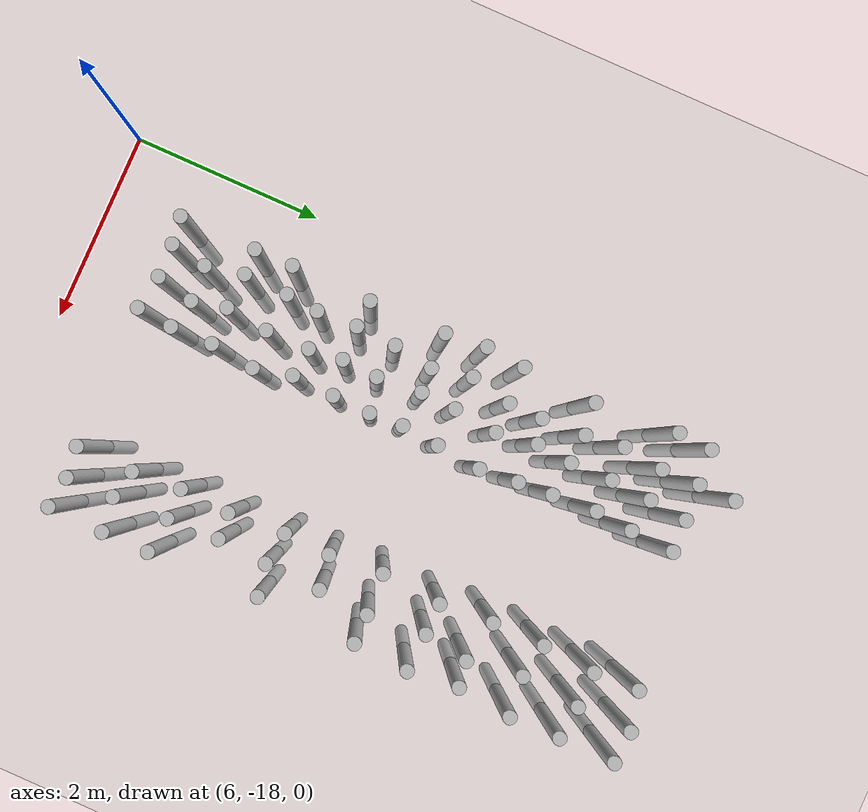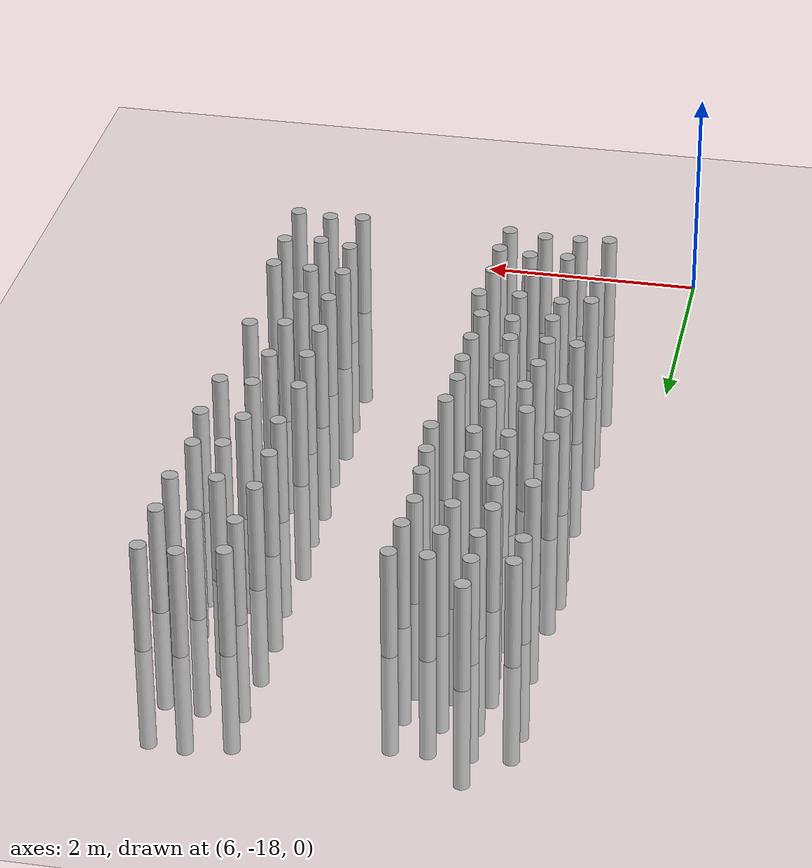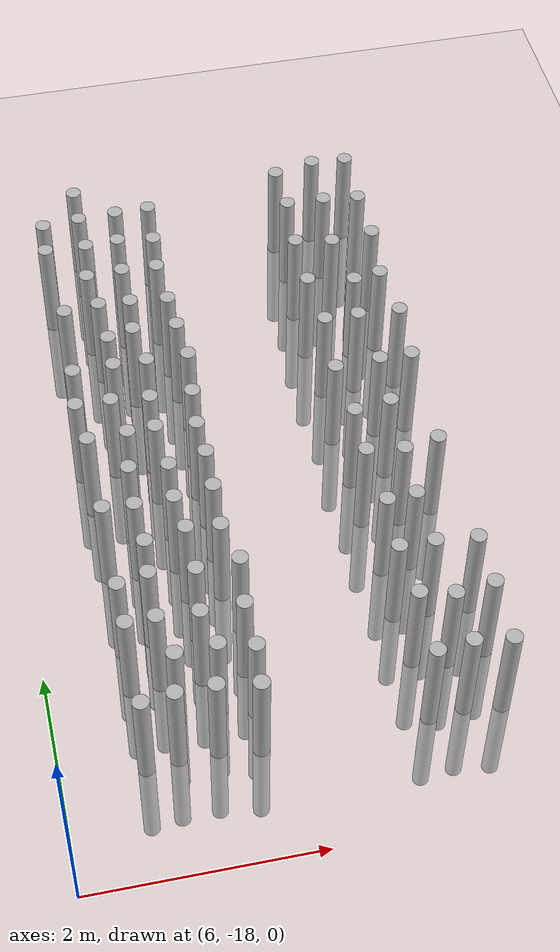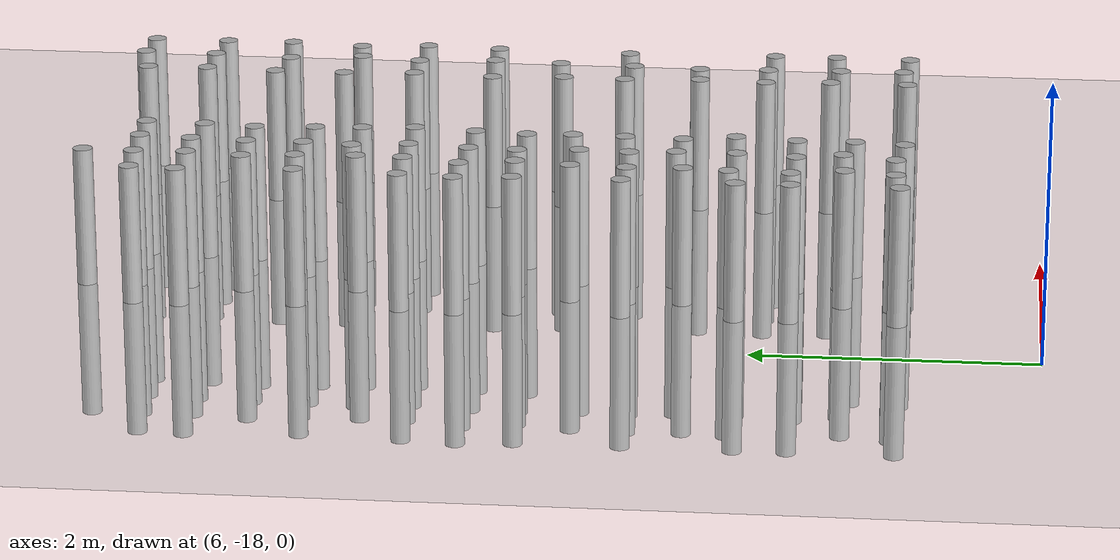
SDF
<sdf version="1.7">
 <world name="farmland_world">
  <model name="ground_plane">
   <static>1</static>
   <link name="link">
    <collision name="collision">
     <geometry><plane><normal>0 0 1</normal><size>40.0 40.0</size></plane></geometry>
     <surface><friction><ode><mu>100</mu><mu2>50</mu2></ode></friction></surface>
    </collision>
    <visual name="visual">
     <cast_shadows>0</cast_shadows>
     <geometry><plane><normal>0 0 1</normal><size>40.0 40.0</size></plane></geometry>
     <material>
      <script><uri>file://media/materials/scripts/gazebo.material</uri><name>Gazebo/Grey</name></script>
     </material>
    </visual>
   </link>
  </model>
  <model name="tree_3_225">
   <static>1</static>
   <link name="link">
    <collision name="collision">
     <geometry><cylinder><radius>0.07</radius><length>2.0</length></cylinder></geometry>
     <surface><friction><ode><mu>100</mu><mu2>50</mu2></ode></friction></surface>
    </collision>
    <visual name="visual">
     <geometry><cylinder><radius>0.07</radius><length>2.0</length></cylinder></geometry>
    </visual>
   </link>
   <pose>6.6757209084733296 -11.627781574815922 0 0 0 0</pose>
  </model>
  <model name="tree_3_226">
   <static>1</static>
   <link name="link">
    <collision name="collision">
     <geometry><cylinder><radius>0.07</radius><length>2.0</length></cylinder></geometry>
     <surface><friction><ode><mu>100</mu><mu2>50</mu2></ode></friction></surface>
    </collision>
    <visual name="visual">
     <geometry><cylinder><radius>0.07</radius><length>2.0</length></cylinder></geometry>
    </visual>
   </link>
   <pose>6.654033084049539 -11.960620914995307 0 0 0 0</pose>
  </model>
  <model name="tree_3_228">
   <static>1</static>
   <link name="link">
    <collision name="collision">
     <geometry><cylinder><radius>0.07</radius><length>2.0</length></cylinder></geometry>
     <surface><friction><ode><mu>100</mu><mu2>50</mu2></ode></friction></surface>
    </collision>
    <visual name="visual">
     <geometry><cylinder><radius>0.07</radius><length>2.0</length></cylinder></geometry>
    </visual>
   </link>
   <pose>6.713250450047386 -12.779822570586507 0 0 0 0</pose>
  </model>
  <model name="tree_3_230">
   <static>1</static>
   <link name="link">
    <collision name="collision">
     <geometry><cylinder><radius>0.07</radius><length>2.0</length></cylinder></geometry>
     <surface><friction><ode><mu>100</mu><mu2>50</mu2></ode></friction></surface>
    </collision>
    <visual name="visual">
     <geometry><cylinder><radius>0.07</radius><length>2.0</length></cylinder></geometry>
    </visual>
   </link>
   <pose>6.682120593932231 -13.515012797646934 0 0 0 0</pose>
  </model>
  <model name="tree_3_231">
   <static>1</static>
   <link name="link">
    <collision name="collision">
     <geometry><cylinder><radius>0.07</radius><length>2.0</length></cylinder></geometry>
     <surface><friction><ode><mu>100</mu><mu2>50</mu2></ode></friction></surface>
    </collision>
    <visual name="visual">
     <geometry><cylinder><radius>0.07</radius><length>2.0</length></cylinder></geometry>
    </visual>
   </link>
   <pose>6.648918619750833 -13.90660849006028 0 0 0 0</pose>
  </model>
  <model name="tree_3_232">
   <static>1</static>
   <link name="link">
    <collision name="collision">
     <geometry><cylinder><radius>0.07</radius><length>2.0</length></cylinder></geometry>
     <surface><friction><ode><mu>100</mu><mu2>50</mu2></ode></friction></surface>
    </collision>
    <visual name="visual">
     <geometry><cylinder><radius>0.07</radius><length>2.0</length></cylinder></geometry>
    </visual>
   </link>
   <pose>6.691366619230604 -14.312559196076746 0 0 0 0</pose>
  </model>
  <model name="tree_3_234">
   <static>1</static>
   <link name="link">
    <collision name="collision">
     <geometry><cylinder><radius>0.07</radius><length>2.0</length></cylinder></geometry>
     <surface><friction><ode><mu>100</mu><mu2>50</mu2></ode></friction></surface>
    </collision>
    <visual name="visual">
     <geometry><cylinder><radius>0.07</radius><length>2.0</length></cylinder></geometry>
    </visual>
   </link>
   <pose>6.702147233670519 -15.071132578475034 0 0 0 0</pose>
  </model>
  <model name="tree_3_236">
   <static>1</static>
   <link name="link">
    <collision name="collision">
     <geometry><cylinder><radius>0.07</radius><length>2.0</length></cylinder></geometry>
     <surface><friction><ode><mu>100</mu><mu2>50</mu2></ode></friction></surface>
    </collision>
    <visual name="visual">
     <geometry><cylinder><radius>0.07</radius><length>2.0</length></cylinder></geometry>
    </visual>
   </link>
   <pose>6.697407712275029 -15.863016078934463 0 0 0 0</pose>
  </model>
  <model name="tree_3_237">
   <static>1</static>
   <link name="link">
    <collision name="collision">
     <geometry><cylinder><radius>0.07</radius><length>2.0</length></cylinder></geometry>
     <surface><friction><ode><mu>100</mu><mu2>50</mu2></ode></friction></surface>
    </collision>
    <visual name="visual">
     <geometry><cylinder><radius>0.07</radius><length>2.0</length></cylinder></geometry>
    </visual>
   </link>
   <pose>6.700175631129246 -16.24446399000892 0 0 0 0</pose>
  </model>
  <model name="tree_3_239">
   <static>1</static>
   <link name="link">
    <collision name="collision">
     <geometry><cylinder><radius>0.07</radius><length>2.0</length></cylinder></geometry>
     <surface><friction><ode><mu>100</mu><mu2>50</mu2></ode></friction></surface>
    </collision>
    <visual name="visual">
     <geometry><cylinder><radius>0.07</radius><length>2.0</length></cylinder></geometry>
    </visual>
   </link>
   <pose>6.700392919126732 -16.99923651371995 0 0 0 0</pose>
  </model>
  <model name="tree_3_264">
   <static>1</static>
   <link name="link">
    <collision name="collision">
     <geometry><cylinder><radius>0.07</radius><length>2.0</length></cylinder></geometry>
     <surface><friction><ode><mu>100</mu><mu2>50</mu2></ode></friction></surface>
    </collision>
    <visual name="visual">
     <geometry><cylinder><radius>0.07</radius><length>2.0</length></cylinder></geometry>
    </visual>
   </link>
   <pose>7.0199345593613955 -11.235737320808928 0 0 0 0</pose>
  </model>
  <model name="tree_3_265">
   <static>1</static>
   <link name="link">
    <collision name="collision">
     <geometry><cylinder><radius>0.07</radius><length>2.0</length></cylinder></geometry>
     <surface><friction><ode><mu>100</mu><mu2>50</mu2></ode></friction></surface>
    </collision>
    <visual name="visual">
     <geometry><cylinder><radius>0.07</radius><length>2.0</length></cylinder></geometry>
    </visual>
   </link>
   <pose>7.016815475823211 -11.598861923744893 0 0 0 0</pose>
  </model>
  <model name="tree_3_266">
   <static>1</static>
   <link name="link">
    <collision name="collision">
     <geometry><cylinder><radius>0.07</radius><length>2.0</length></cylinder></geometry>
     <surface><friction><ode><mu>100</mu><mu2>50</mu2></ode></friction></surface>
    </collision>
    <visual name="visual">
     <geometry><cylinder><radius>0.07</radius><length>2.0</length></cylinder></geometry>
    </visual>
   </link>
   <pose>7.027858883731522 -11.969221227662278 0 0 0 0</pose>
  </model>
  <model name="tree_3_267">
   <static>1</static>
   <link name="link">
    <collision name="collision">
     <geometry><cylinder><radius>0.07</radius><length>2.0</length></cylinder></geometry>
     <surface><friction><ode><mu>100</mu><mu2>50</mu2></ode></friction></surface>
    </collision>
    <visual name="visual">
     <geometry><cylinder><radius>0.07</radius><length>2.0</length></cylinder></geometry>
    </visual>
   </link>
   <pose>6.9793809450566044 -12.369708072480565 0 0 0 0</pose>
  </model>
  <model name="tree_3_268">
   <static>1</static>
   <link name="link">
    <collision name="collision">
     <geometry><cylinder><radius>0.07</radius><length>2.0</length></cylinder></geometry>
     <surface><friction><ode><mu>100</mu><mu2>50</mu2></ode></friction></surface>
    </collision>
    <visual name="visual">
     <geometry><cylinder><radius>0.07</radius><length>2.0</length></cylinder></geometry>
    </visual>
   </link>
   <pose>7.027796176969419 -12.7448925585448 0 0 0 0</pose>
  </model>
  <model name="tree_3_269">
   <static>1</static>
   <link name="link">
    <collision name="collision">
     <geometry><cylinder><radius>0.07</radius><length>2.0</length></cylinder></geometry>
     <surface><friction><ode><mu>100</mu><mu2>50</mu2></ode></friction></surface>
    </collision>
    <visual name="visual">
     <geometry><cylinder><radius>0.07</radius><length>2.0</length></cylinder></geometry>
    </visual>
   </link>
   <pose>7.04818018127769 -13.173696609972552 0 0 0 0</pose>
  </model>
  <model name="tree_3_270">
   <static>1</static>
   <link name="link">
    <collision name="collision">
     <geometry><cylinder><radius>0.07</radius><length>2.0</length></cylinder></geometry>
     <surface><friction><ode><mu>100</mu><mu2>50</mu2></ode></friction></surface>
    </collision>
    <visual name="visual">
     <geometry><cylinder><radius>0.07</radius><length>2.0</length></cylinder></geometry>
    </visual>
   </link>
   <pose>7.04375262689451 -13.506095913871583 0 0 0 0</pose>
  </model>
  <model name="tree_3_271">
   <static>1</static>
   <link name="link">
    <collision name="collision">
     <geometry><cylinder><radius>0.07</radius><length>2.0</length></cylinder></geometry>
     <surface><friction><ode><mu>100</mu><mu2>50</mu2></ode></friction></surface>
    </collision>
    <visual name="visual">
     <geometry><cylinder><radius>0.07</radius><length>2.0</length></cylinder></geometry>
    </visual>
   </link>
   <pose>6.9576137599436425 -13.911111839731664 0 0 0 0</pose>
  </model>
  <model name="tree_3_272">
   <static>1</static>
   <link name="link">
    <collision name="collision">
     <geometry><cylinder><radius>0.07</radius><length>2.0</length></cylinder></geometry>
     <surface><friction><ode><mu>100</mu><mu2>50</mu2></ode></friction></surface>
    </collision>
    <visual name="visual">
     <geometry><cylinder><radius>0.07</radius><length>2.0</length></cylinder></geometry>
    </visual>
   </link>
   <pose>7.0402779214251865 -14.299443892996946 0 0 0 0</pose>
  </model>
  <model name="tree_3_273">
   <static>1</static>
   <link name="link">
    <collision name="collision">
     <geometry><cylinder><radius>0.07</radius><length>2.0</length></cylinder></geometry>
     <surface><friction><ode><mu>100</mu><mu2>50</mu2></ode></friction></surface>
    </collision>
    <visual name="visual">
     <geometry><cylinder><radius>0.07</radius><length>2.0</length></cylinder></geometry>
    </visual>
   </link>
   <pose>6.985496438939853 -14.691023784064464 0 0 0 0</pose>
  </model>
  <model name="tree_3_274">
   <static>1</static>
   <link name="link">
    <collision name="collision">
     <geometry><cylinder><radius>0.07</radius><length>2.0</length></cylinder></geometry>
     <surface><friction><ode><mu>100</mu><mu2>50</mu2></ode></friction></surface>
    </collision>
    <visual name="visual">
     <geometry><cylinder><radius>0.07</radius><length>2.0</length></cylinder></geometry>
    </visual>
   </link>
   <pose>6.9681554761230515 -15.08855197787072 0 0 0 0</pose>
  </model>
  <model name="tree_3_275">
   <static>1</static>
   <link name="link">
    <collision name="collision">
     <geometry><cylinder><radius>0.07</radius><length>2.0</length></cylinder></geometry>
     <surface><friction><ode><mu>100</mu><mu2>50</mu2></ode></friction></surface>
    </collision>
    <visual name="visual">
     <geometry><cylinder><radius>0.07</radius><length>2.0</length></cylinder></geometry>
    </visual>
   </link>
   <pose>6.987598956393732 -15.483121303606092 0 0 0 0</pose>
  </model>
  <model name="tree_3_276">
   <static>1</static>
   <link name="link">
    <collision name="collision">
     <geometry><cylinder><radius>0.07</radius><length>2.0</length></cylinder></geometry>
     <surface><friction><ode><mu>100</mu><mu2>50</mu2></ode></friction></surface>
    </collision>
    <visual name="visual">
     <geometry><cylinder><radius>0.07</radius><length>2.0</length></cylinder></geometry>
    </visual>
   </link>
   <pose>6.9611742674986425 -15.801608901668127 0 0 0 0</pose>
  </model>
  <model name="tree_3_277">
   <static>1</static>
   <link name="link">
    <collision name="collision">
     <geometry><cylinder><radius>0.07</radius><length>2.0</length></cylinder></geometry>
     <surface><friction><ode><mu>100</mu><mu2>50</mu2></ode></friction></surface>
    </collision>
    <visual name="visual">
     <geometry><cylinder><radius>0.07</radius><length>2.0</length></cylinder></geometry>
    </visual>
   </link>
   <pose>6.950168716073832 -16.235029722094097 0 0 0 0</pose>
  </model>
  <model name="tree_3_278">
   <static>1</static>
   <link name="link">
    <collision name="collision">
     <geometry><cylinder><radius>0.07</radius><length>2.0</length></cylinder></geometry>
     <surface><friction><ode><mu>100</mu><mu2>50</mu2></ode></friction></surface>
    </collision>
    <visual name="visual">
     <geometry><cylinder><radius>0.07</radius><length>2.0</length></cylinder></geometry>
    </visual>
   </link>
   <pose>7.030352306451255 -16.607171518955557 0 0 0 0</pose>
  </model>
  <model name="tree_3_279">
   <static>1</static>
   <link name="link">
    <collision name="collision">
     <geometry><cylinder><radius>0.07</radius><length>2.0</length></cylinder></geometry>
     <surface><friction><ode><mu>100</mu><mu2>50</mu2></ode></friction></surface>
    </collision>
    <visual name="visual">
     <geometry><cylinder><radius>0.07</radius><length>2.0</length></cylinder></geometry>
    </visual>
   </link>
   <pose>6.969258068537618 -16.963137498983905 0 0 0 0</pose>
  </model>
  <model name="tree_3_305">
   <static>1</static>
   <link name="link">
    <collision name="collision">
     <geometry><cylinder><radius>0.07</radius><length>2.0</length></cylinder></geometry>
     <surface><friction><ode><mu>100</mu><mu2>50</mu2></ode></friction></surface>
    </collision>
    <visual name="visual">
     <geometry><cylinder><radius>0.07</radius><length>2.0</length></cylinder></geometry>
    </visual>
   </link>
   <pose>7.367881109921556 -11.580727472180902 0 0 0 0</pose>
  </model>
  <model name="tree_3_306">
   <static>1</static>
   <link name="link">
    <collision name="collision">
     <geometry><cylinder><radius>0.07</radius><length>2.0</length></cylinder></geometry>
     <surface><friction><ode><mu>100</mu><mu2>50</mu2></ode></friction></surface>
    </collision>
    <visual name="visual">
     <geometry><cylinder><radius>0.07</radius><length>2.0</length></cylinder></geometry>
    </visual>
   </link>
   <pose>7.331464618602618 -11.953295131070167 0 0 0 0</pose>
  </model>
  <model name="tree_3_307">
   <static>1</static>
   <link name="link">
    <collision name="collision">
     <geometry><cylinder><radius>0.07</radius><length>2.0</length></cylinder></geometry>
     <surface><friction><ode><mu>100</mu><mu2>50</mu2></ode></friction></surface>
    </collision>
    <visual name="visual">
     <geometry><cylinder><radius>0.07</radius><length>2.0</length></cylinder></geometry>
    </visual>
   </link>
   <pose>7.3083852555803555 -12.3534888959813 0 0 0 0</pose>
  </model>
  <model name="tree_3_308">
   <static>1</static>
   <link name="link">
    <collision name="collision">
     <geometry><cylinder><radius>0.07</radius><length>2.0</length></cylinder></geometry>
     <surface><friction><ode><mu>100</mu><mu2>50</mu2></ode></friction></surface>
    </collision>
    <visual name="visual">
     <geometry><cylinder><radius>0.07</radius><length>2.0</length></cylinder></geometry>
    </visual>
   </link>
   <pose>7.316087026403161 -12.76348890452901 0 0 0 0</pose>
  </model>
  <model name="tree_3_309">
   <static>1</static>
   <link name="link">
    <collision name="collision">
     <geometry><cylinder><radius>0.07</radius><length>2.0</length></cylinder></geometry>
     <surface><friction><ode><mu>100</mu><mu2>50</mu2></ode></friction></surface>
    </collision>
    <visual name="visual">
     <geometry><cylinder><radius>0.07</radius><length>2.0</length></cylinder></geometry>
    </visual>
   </link>
   <pose>7.283296075690766 -13.111962250141662 0 0 0 0</pose>
  </model>
  <model name="tree_3_310">
   <static>1</static>
   <link name="link">
    <collision name="collision">
     <geometry><cylinder><radius>0.07</radius><length>2.0</length></cylinder></geometry>
     <surface><friction><ode><mu>100</mu><mu2>50</mu2></ode></friction></surface>
    </collision>
    <visual name="visual">
     <geometry><cylinder><radius>0.07</radius><length>2.0</length></cylinder></geometry>
    </visual>
   </link>
   <pose>7.3407145605844 -13.511245894886748 0 0 0 0</pose>
  </model>
  <model name="tree_3_311">
   <static>1</static>
   <link name="link">
    <collision name="collision">
     <geometry><cylinder><radius>0.07</radius><length>2.0</length></cylinder></geometry>
     <surface><friction><ode><mu>100</mu><mu2>50</mu2></ode></friction></surface>
    </collision>
    <visual name="visual">
     <geometry><cylinder><radius>0.07</radius><length>2.0</length></cylinder></geometry>
    </visual>
   </link>
   <pose>7.296365950192599 -13.943047985052 0 0 0 0</pose>
  </model>
  <model name="tree_3_312">
   <static>1</static>
   <link name="link">
    <collision name="collision">
     <geometry><cylinder><radius>0.07</radius><length>2.0</length></cylinder></geometry>
     <surface><friction><ode><mu>100</mu><mu2>50</mu2></ode></friction></surface>
    </collision>
    <visual name="visual">
     <geometry><cylinder><radius>0.07</radius><length>2.0</length></cylinder></geometry>
    </visual>
   </link>
   <pose>7.2828049138993975 -14.28827136613006 0 0 0 0</pose>
  </model>
  <model name="tree_3_313">
   <static>1</static>
   <link name="link">
    <collision name="collision">
     <geometry><cylinder><radius>0.07</radius><length>2.0</length></cylinder></geometry>
     <surface><friction><ode><mu>100</mu><mu2>50</mu2></ode></friction></surface>
    </collision>
    <visual name="visual">
     <geometry><cylinder><radius>0.07</radius><length>2.0</length></cylinder></geometry>
    </visual>
   </link>
   <pose>7.320648048785826 -14.727880244412273 0 0 0 0</pose>
  </model>
  <model name="tree_3_314">
   <static>1</static>
   <link name="link">
    <collision name="collision">
     <geometry><cylinder><radius>0.07</radius><length>2.0</length></cylinder></geometry>
     <surface><friction><ode><mu>100</mu><mu2>50</mu2></ode></friction></surface>
    </collision>
    <visual name="visual">
     <geometry><cylinder><radius>0.07</radius><length>2.0</length></cylinder></geometry>
    </visual>
   </link>
   <pose>7.302786103489974 -15.080441542419926 0 0 0 0</pose>
  </model>
  <model name="tree_3_315">
   <static>1</static>
   <link name="link">
    <collision name="collision">
     <geometry><cylinder><radius>0.07</radius><length>2.0</length></cylinder></geometry>
     <surface><friction><ode><mu>100</mu><mu2>50</mu2></ode></friction></surface>
    </collision>
    <visual name="visual">
     <geometry><cylinder><radius>0.07</radius><length>2.0</length></cylinder></geometry>
    </visual>
   </link>
   <pose>7.340727741222866 -15.411757053782182 0 0 0 0</pose>
  </model>
  <model name="tree_3_316">
   <static>1</static>
   <link name="link">
    <collision name="collision">
     <geometry><cylinder><radius>0.07</radius><length>2.0</length></cylinder></geometry>
     <surface><friction><ode><mu>100</mu><mu2>50</mu2></ode></friction></surface>
    </collision>
    <visual name="visual">
     <geometry><cylinder><radius>0.07</radius><length>2.0</length></cylinder></geometry>
    </visual>
   </link>
   <pose>7.3452793099335345 -15.839707225633978 0 0 0 0</pose>
  </model>
  <model name="tree_3_317">
   <static>1</static>
   <link name="link">
    <collision name="collision">
     <geometry><cylinder><radius>0.07</radius><length>2.0</length></cylinder></geometry>
     <surface><friction><ode><mu>100</mu><mu2>50</mu2></ode></friction></surface>
    </collision>
    <visual name="visual">
     <geometry><cylinder><radius>0.07</radius><length>2.0</length></cylinder></geometry>
    </visual>
   </link>
   <pose>7.300076439728872 -16.2576795701557 0 0 0 0</pose>
  </model>
  <model name="tree_3_318">
   <static>1</static>
   <link name="link">
    <collision name="collision">
     <geometry><cylinder><radius>0.07</radius><length>2.0</length></cylinder></geometry>
     <surface><friction><ode><mu>100</mu><mu2>50</mu2></ode></friction></surface>
    </collision>
    <visual name="visual">
     <geometry><cylinder><radius>0.07</radius><length>2.0</length></cylinder></geometry>
    </visual>
   </link>
   <pose>7.37820815591885 -16.586719314439026 0 0 0 0</pose>
  </model>
  <model name="tree_3_319">
   <static>1</static>
   <link name="link">
    <collision name="collision">
     <geometry><cylinder><radius>0.07</radius><length>2.0</length></cylinder></geometry>
     <surface><friction><ode><mu>100</mu><mu2>50</mu2></ode></friction></surface>
    </collision>
    <visual name="visual">
     <geometry><cylinder><radius>0.07</radius><length>2.0</length></cylinder></geometry>
    </visual>
   </link>
   <pose>7.295502163413436 -16.956007430794457 0 0 0 0</pose>
  </model>
  <model name="tree_3_345">
   <static>1</static>
   <link name="link">
    <collision name="collision">
     <geometry><cylinder><radius>0.07</radius><length>2.0</length></cylinder></geometry>
     <surface><friction><ode><mu>100</mu><mu2>50</mu2></ode></friction></surface>
    </collision>
    <visual name="visual">
     <geometry><cylinder><radius>0.07</radius><length>2.0</length></cylinder></geometry>
    </visual>
   </link>
   <pose>7.683026883044346 -11.5727115175024 0 0 0 0</pose>
  </model>
  <model name="tree_3_346">
   <static>1</static>
   <link name="link">
    <collision name="collision">
     <geometry><cylinder><radius>0.07</radius><length>2.0</length></cylinder></geometry>
     <surface><friction><ode><mu>100</mu><mu2>50</mu2></ode></friction></surface>
    </collision>
    <visual name="visual">
     <geometry><cylinder><radius>0.07</radius><length>2.0</length></cylinder></geometry>
    </visual>
   </link>
   <pose>7.661410401682367 -11.999241881893596 0 0 0 0</pose>
  </model>
  <model name="tree_3_347">
   <static>1</static>
   <link name="link">
    <collision name="collision">
     <geometry><cylinder><radius>0.07</radius><length>2.0</length></cylinder></geometry>
     <surface><friction><ode><mu>100</mu><mu2>50</mu2></ode></friction></surface>
    </collision>
    <visual name="visual">
     <geometry><cylinder><radius>0.07</radius><length>2.0</length></cylinder></geometry>
    </visual>
   </link>
   <pose>7.628367741999803 -12.365782348127262 0 0 0 0</pose>
  </model>
  <model name="tree_3_348">
   <static>1</static>
   <link name="link">
    <collision name="collision">
     <geometry><cylinder><radius>0.07</radius><length>2.0</length></cylinder></geometry>
     <surface><friction><ode><mu>100</mu><mu2>50</mu2></ode></friction></surface>
    </collision>
    <visual name="visual">
     <geometry><cylinder><radius>0.07</radius><length>2.0</length></cylinder></geometry>
    </visual>
   </link>
   <pose>7.656088807725301 -12.798930697572269 0 0 0 0</pose>
  </model>
  <model name="tree_3_349">
   <static>1</static>
   <link name="link">
    <collision name="collision">
     <geometry><cylinder><radius>0.07</radius><length>2.0</length></cylinder></geometry>
     <surface><friction><ode><mu>100</mu><mu2>50</mu2></ode></friction></surface>
    </collision>
    <visual name="visual">
     <geometry><cylinder><radius>0.07</radius><length>2.0</length></cylinder></geometry>
    </visual>
   </link>
   <pose>7.677751763358851 -13.13528942457598 0 0 0 0</pose>
  </model>
  <model name="tree_3_350">
   <static>1</static>
   <link name="link">
    <collision name="collision">
     <geometry><cylinder><radius>0.07</radius><length>2.0</length></cylinder></geometry>
     <surface><friction><ode><mu>100</mu><mu2>50</mu2></ode></friction></surface>
    </collision>
    <visual name="visual">
     <geometry><cylinder><radius>0.07</radius><length>2.0</length></cylinder></geometry>
    </visual>
   </link>
   <pose>7.712598300408769 -13.512715768976019 0 0 0 0</pose>
  </model>
  <model name="tree_3_351">
   <static>1</static>
   <link name="link">
    <collision name="collision">
     <geometry><cylinder><radius>0.07</radius><length>2.0</length></cylinder></geometry>
     <surface><friction><ode><mu>100</mu><mu2>50</mu2></ode></friction></surface>
    </collision>
    <visual name="visual">
     <geometry><cylinder><radius>0.07</radius><length>2.0</length></cylinder></geometry>
    </visual>
   </link>
   <pose>7.668943595733702 -13.954133922944608 0 0 0 0</pose>
  </model>
  <model name="tree_3_352">
   <static>1</static>
   <link name="link">
    <collision name="collision">
     <geometry><cylinder><radius>0.07</radius><length>2.0</length></cylinder></geometry>
     <surface><friction><ode><mu>100</mu><mu2>50</mu2></ode></friction></surface>
    </collision>
    <visual name="visual">
     <geometry><cylinder><radius>0.07</radius><length>2.0</length></cylinder></geometry>
    </visual>
   </link>
   <pose>7.636218649699273 -14.32422812074116 0 0 0 0</pose>
  </model>
  <model name="tree_3_353">
   <static>1</static>
   <link name="link">
    <collision name="collision">
     <geometry><cylinder><radius>0.07</radius><length>2.0</length></cylinder></geometry>
     <surface><friction><ode><mu>100</mu><mu2>50</mu2></ode></friction></surface>
    </collision>
    <visual name="visual">
     <geometry><cylinder><radius>0.07</radius><length>2.0</length></cylinder></geometry>
    </visual>
   </link>
   <pose>7.653692204135206 -14.65302516700279 0 0 0 0</pose>
  </model>
  <model name="tree_3_354">
   <static>1</static>
   <link name="link">
    <collision name="collision">
     <geometry><cylinder><radius>0.07</radius><length>2.0</length></cylinder></geometry>
     <surface><friction><ode><mu>100</mu><mu2>50</mu2></ode></friction></surface>
    </collision>
    <visual name="visual">
     <geometry><cylinder><radius>0.07</radius><length>2.0</length></cylinder></geometry>
    </visual>
   </link>
   <pose>7.6440087809682975 -15.027406830189788 0 0 0 0</pose>
  </model>
  <model name="tree_3_355">
   <static>1</static>
   <link name="link">
    <collision name="collision">
     <geometry><cylinder><radius>0.07</radius><length>2.0</length></cylinder></geometry>
     <surface><friction><ode><mu>100</mu><mu2>50</mu2></ode></friction></surface>
    </collision>
    <visual name="visual">
     <geometry><cylinder><radius>0.07</radius><length>2.0</length></cylinder></geometry>
    </visual>
   </link>
   <pose>7.6260584406907075 -15.44277527337931 0 0 0 0</pose>
  </model>
  <model name="tree_3_356">
   <static>1</static>
   <link name="link">
    <collision name="collision">
     <geometry><cylinder><radius>0.07</radius><length>2.0</length></cylinder></geometry>
     <surface><friction><ode><mu>100</mu><mu2>50</mu2></ode></friction></surface>
    </collision>
    <visual name="visual">
     <geometry><cylinder><radius>0.07</radius><length>2.0</length></cylinder></geometry>
    </visual>
   </link>
   <pose>7.713758026631503 -15.813276545030886 0 0 0 0</pose>
  </model>
  <model name="tree_3_357">
   <static>1</static>
   <link name="link">
    <collision name="collision">
     <geometry><cylinder><radius>0.07</radius><length>2.0</length></cylinder></geometry>
     <surface><friction><ode><mu>100</mu><mu2>50</mu2></ode></friction></surface>
    </collision>
    <visual name="visual">
     <geometry><cylinder><radius>0.07</radius><length>2.0</length></cylinder></geometry>
    </visual>
   </link>
   <pose>7.662839487293589 -16.24810582809628 0 0 0 0</pose>
  </model>
  <model name="tree_3_358">
   <static>1</static>
   <link name="link">
    <collision name="collision">
     <geometry><cylinder><radius>0.07</radius><length>2.0</length></cylinder></geometry>
     <surface><friction><ode><mu>100</mu><mu2>50</mu2></ode></friction></surface>
    </collision>
    <visual name="visual">
     <geometry><cylinder><radius>0.07</radius><length>2.0</length></cylinder></geometry>
    </visual>
   </link>
   <pose>7.672191604602472 -16.659973310099947 0 0 0 0</pose>
  </model>
  <model name="tree_3_359">
   <static>1</static>
   <link name="link">
    <collision name="collision">
     <geometry><cylinder><radius>0.07</radius><length>2.0</length></cylinder></geometry>
     <surface><friction><ode><mu>100</mu><mu2>50</mu2></ode></friction></surface>
    </collision>
    <visual name="visual">
     <geometry><cylinder><radius>0.07</radius><length>2.0</length></cylinder></geometry>
    </visual>
   </link>
   <pose>7.638020240470509 -17.012915821392927 0 0 0 0</pose>
  </model>
  <model name="tree_3_378">
   <static>1</static>
   <link name="link">
    <collision name="collision">
     <geometry><cylinder><radius>0.07</radius><length>2.0</length></cylinder></geometry>
     <surface><friction><ode><mu>100</mu><mu2>50</mu2></ode></friction></surface>
    </collision>
    <visual name="visual">
     <geometry><cylinder><radius>0.07</radius><length>2.0</length></cylinder></geometry>
    </visual>
   </link>
   <pose>8.976361853864484 -11.345325435905888 0 0 0 0</pose>
  </model>
  <model name="tree_3_379">
   <static>1</static>
   <link name="link">
    <collision name="collision">
     <geometry><cylinder><radius>0.07</radius><length>2.0</length></cylinder></geometry>
     <surface><friction><ode><mu>100</mu><mu2>50</mu2></ode></friction></surface>
    </collision>
    <visual name="visual">
     <geometry><cylinder><radius>0.07</radius><length>2.0</length></cylinder></geometry>
    </visual>
   </link>
   <pose>8.994778462019694 -11.788630684543314 0 0 0 0</pose>
  </model>
  <model name="tree_3_380">
   <static>1</static>
   <link name="link">
    <collision name="collision">
     <geometry><cylinder><radius>0.07</radius><length>2.0</length></cylinder></geometry>
     <surface><friction><ode><mu>100</mu><mu2>50</mu2></ode></friction></surface>
    </collision>
    <visual name="visual">
     <geometry><cylinder><radius>0.07</radius><length>2.0</length></cylinder></geometry>
    </visual>
   </link>
   <pose>8.95812756331867 -12.307904143550012 0 0 0 0</pose>
  </model>
  <model name="tree_3_381">
   <static>1</static>
   <link name="link">
    <collision name="collision">
     <geometry><cylinder><radius>0.07</radius><length>2.0</length></cylinder></geometry>
     <surface><friction><ode><mu>100</mu><mu2>50</mu2></ode></friction></surface>
    </collision>
    <visual name="visual">
     <geometry><cylinder><radius>0.07</radius><length>2.0</length></cylinder></geometry>
    </visual>
   </link>
   <pose>8.957379419340876 -12.822535521925868 0 0 0 0</pose>
  </model>
  <model name="tree_3_382">
   <static>1</static>
   <link name="link">
    <collision name="collision">
     <geometry><cylinder><radius>0.07</radius><length>2.0</length></cylinder></geometry>
     <surface><friction><ode><mu>100</mu><mu2>50</mu2></ode></friction></surface>
    </collision>
    <visual name="visual">
     <geometry><cylinder><radius>0.07</radius><length>2.0</length></cylinder></geometry>
    </visual>
   </link>
   <pose>8.998979663755653 -13.34381433399578 0 0 0 0</pose>
  </model>
  <model name="tree_3_383">
   <static>1</static>
   <link name="link">
    <collision name="collision">
     <geometry><cylinder><radius>0.07</radius><length>2.0</length></cylinder></geometry>
     <surface><friction><ode><mu>100</mu><mu2>50</mu2></ode></friction></surface>
    </collision>
    <visual name="visual">
     <geometry><cylinder><radius>0.07</radius><length>2.0</length></cylinder></geometry>
    </visual>
   </link>
   <pose>8.956019266038288 -13.9338329851662 0 0 0 0</pose>
  </model>
  <model name="tree_3_384">
   <static>1</static>
   <link name="link">
    <collision name="collision">
     <geometry><cylinder><radius>0.07</radius><length>2.0</length></cylinder></geometry>
     <surface><friction><ode><mu>100</mu><mu2>50</mu2></ode></friction></surface>
    </collision>
    <visual name="visual">
     <geometry><cylinder><radius>0.07</radius><length>2.0</length></cylinder></geometry>
    </visual>
   </link>
   <pose>9.001111332712545 -14.460646127157878 0 0 0 0</pose>
  </model>
  <model name="tree_3_385">
   <static>1</static>
   <link name="link">
    <collision name="collision">
     <geometry><cylinder><radius>0.07</radius><length>2.0</length></cylinder></geometry>
     <surface><friction><ode><mu>100</mu><mu2>50</mu2></ode></friction></surface>
    </collision>
    <visual name="visual">
     <geometry><cylinder><radius>0.07</radius><length>2.0</length></cylinder></geometry>
    </visual>
   </link>
   <pose>8.989427558392775 -14.914372102875872 0 0 0 0</pose>
  </model>
  <model name="tree_3_386">
   <static>1</static>
   <link name="link">
    <collision name="collision">
     <geometry><cylinder><radius>0.07</radius><length>2.0</length></cylinder></geometry>
     <surface><friction><ode><mu>100</mu><mu2>50</mu2></ode></friction></surface>
    </collision>
    <visual name="visual">
     <geometry><cylinder><radius>0.07</radius><length>2.0</length></cylinder></geometry>
    </visual>
   </link>
   <pose>9.02952919186728 -15.469531559428852 0 0 0 0</pose>
  </model>
  <model name="tree_3_387">
   <static>1</static>
   <link name="link">
    <collision name="collision">
     <geometry><cylinder><radius>0.07</radius><length>2.0</length></cylinder></geometry>
     <surface><friction><ode><mu>100</mu><mu2>50</mu2></ode></friction></surface>
    </collision>
    <visual name="visual">
     <geometry><cylinder><radius>0.07</radius><length>2.0</length></cylinder></geometry>
    </visual>
   </link>
   <pose>9.005190817521427 -15.957743678315524 0 0 0 0</pose>
  </model>
  <model name="tree_3_388">
   <static>1</static>
   <link name="link">
    <collision name="collision">
     <geometry><cylinder><radius>0.07</radius><length>2.0</length></cylinder></geometry>
     <surface><friction><ode><mu>100</mu><mu2>50</mu2></ode></friction></surface>
    </collision>
    <visual name="visual">
     <geometry><cylinder><radius>0.07</radius><length>2.0</length></cylinder></geometry>
    </visual>
   </link>
   <pose>9.04281252923893 -16.43617270172834 0 0 0 0</pose>
  </model>
  <model name="tree_3_389">
   <static>1</static>
   <link name="link">
    <collision name="collision">
     <geometry><cylinder><radius>0.07</radius><length>2.0</length></cylinder></geometry>
     <surface><friction><ode><mu>100</mu><mu2>50</mu2></ode></friction></surface>
    </collision>
    <visual name="visual">
     <geometry><cylinder><radius>0.07</radius><length>2.0</length></cylinder></geometry>
    </visual>
   </link>
   <pose>9.03816625961886 -16.99961709468469 0 0 0 0</pose>
  </model>
  <model name="tree_3_408">
   <static>1</static>
   <link name="link">
    <collision name="collision">
     <geometry><cylinder><radius>0.07</radius><length>2.0</length></cylinder></geometry>
     <surface><friction><ode><mu>100</mu><mu2>50</mu2></ode></friction></surface>
    </collision>
    <visual name="visual">
     <geometry><cylinder><radius>0.07</radius><length>2.0</length></cylinder></geometry>
    </visual>
   </link>
   <pose>9.354327013632748 -11.26101170241758 0 0 0 0</pose>
  </model>
  <model name="tree_3_409">
   <static>1</static>
   <link name="link">
    <collision name="collision">
     <geometry><cylinder><radius>0.07</radius><length>2.0</length></cylinder></geometry>
     <surface><friction><ode><mu>100</mu><mu2>50</mu2></ode></friction></surface>
    </collision>
    <visual name="visual">
     <geometry><cylinder><radius>0.07</radius><length>2.0</length></cylinder></geometry>
    </visual>
   </link>
   <pose>9.343544378252126 -11.796920824950645 0 0 0 0</pose>
  </model>
  <model name="tree_3_410">
   <static>1</static>
   <link name="link">
    <collision name="collision">
     <geometry><cylinder><radius>0.07</radius><length>2.0</length></cylinder></geometry>
     <surface><friction><ode><mu>100</mu><mu2>50</mu2></ode></friction></surface>
    </collision>
    <visual name="visual">
     <geometry><cylinder><radius>0.07</radius><length>2.0</length></cylinder></geometry>
    </visual>
   </link>
   <pose>9.294555047050688 -12.372839289518042 0 0 0 0</pose>
  </model>
  <model name="tree_3_411">
   <static>1</static>
   <link name="link">
    <collision name="collision">
     <geometry><cylinder><radius>0.07</radius><length>2.0</length></cylinder></geometry>
     <surface><friction><ode><mu>100</mu><mu2>50</mu2></ode></friction></surface>
    </collision>
    <visual name="visual">
     <geometry><cylinder><radius>0.07</radius><length>2.0</length></cylinder></geometry>
    </visual>
   </link>
   <pose>9.376445905481285 -12.907104265344753 0 0 0 0</pose>
  </model>
  <model name="tree_3_412">
   <static>1</static>
   <link name="link">
    <collision name="collision">
     <geometry><cylinder><radius>0.07</radius><length>2.0</length></cylinder></geometry>
     <surface><friction><ode><mu>100</mu><mu2>50</mu2></ode></friction></surface>
    </collision>
    <visual name="visual">
     <geometry><cylinder><radius>0.07</radius><length>2.0</length></cylinder></geometry>
    </visual>
   </link>
   <pose>9.305608773502726 -13.345328763649661 0 0 0 0</pose>
  </model>
  <model name="tree_3_413">
   <static>1</static>
   <link name="link">
    <collision name="collision">
     <geometry><cylinder><radius>0.07</radius><length>2.0</length></cylinder></geometry>
     <surface><friction><ode><mu>100</mu><mu2>50</mu2></ode></friction></surface>
    </collision>
    <visual name="visual">
     <geometry><cylinder><radius>0.07</radius><length>2.0</length></cylinder></geometry>
    </visual>
   </link>
   <pose>9.363117679275522 -13.91374379994975 0 0 0 0</pose>
  </model>
  <model name="tree_3_414">
   <static>1</static>
   <link name="link">
    <collision name="collision">
     <geometry><cylinder><radius>0.07</radius><length>2.0</length></cylinder></geometry>
     <surface><friction><ode><mu>100</mu><mu2>50</mu2></ode></friction></surface>
    </collision>
    <visual name="visual">
     <geometry><cylinder><radius>0.07</radius><length>2.0</length></cylinder></geometry>
    </visual>
   </link>
   <pose>9.331297225712555 -14.40968105188003 0 0 0 0</pose>
  </model>
  <model name="tree_3_415">
   <static>1</static>
   <link name="link">
    <collision name="collision">
     <geometry><cylinder><radius>0.07</radius><length>2.0</length></cylinder></geometry>
     <surface><friction><ode><mu>100</mu><mu2>50</mu2></ode></friction></surface>
    </collision>
    <visual name="visual">
     <geometry><cylinder><radius>0.07</radius><length>2.0</length></cylinder></geometry>
    </visual>
   </link>
   <pose>9.315000918850712 -14.961568996241056 0 0 0 0</pose>
  </model>
  <model name="tree_3_416">
   <static>1</static>
   <link name="link">
    <collision name="collision">
     <geometry><cylinder><radius>0.07</radius><length>2.0</length></cylinder></geometry>
     <surface><friction><ode><mu>100</mu><mu2>50</mu2></ode></friction></surface>
    </collision>
    <visual name="visual">
     <geometry><cylinder><radius>0.07</radius><length>2.0</length></cylinder></geometry>
    </visual>
   </link>
   <pose>9.285209632380248 -15.452534496028246 0 0 0 0</pose>
  </model>
  <model name="tree_3_417">
   <static>1</static>
   <link name="link">
    <collision name="collision">
     <geometry><cylinder><radius>0.07</radius><length>2.0</length></cylinder></geometry>
     <surface><friction><ode><mu>100</mu><mu2>50</mu2></ode></friction></surface>
    </collision>
    <visual name="visual">
     <geometry><cylinder><radius>0.07</radius><length>2.0</length></cylinder></geometry>
    </visual>
   </link>
   <pose>9.306881177909574 -15.961967694031877 0 0 0 0</pose>
  </model>
  <model name="tree_3_418">
   <static>1</static>
   <link name="link">
    <collision name="collision">
     <geometry><cylinder><radius>0.07</radius><length>2.0</length></cylinder></geometry>
     <surface><friction><ode><mu>100</mu><mu2>50</mu2></ode></friction></surface>
    </collision>
    <visual name="visual">
     <geometry><cylinder><radius>0.07</radius><length>2.0</length></cylinder></geometry>
    </visual>
   </link>
   <pose>9.328301131189612 -16.500988616741385 0 0 0 0</pose>
  </model>
  <model name="tree_3_419">
   <static>1</static>
   <link name="link">
    <collision name="collision">
     <geometry><cylinder><radius>0.07</radius><length>2.0</length></cylinder></geometry>
     <surface><friction><ode><mu>100</mu><mu2>50</mu2></ode></friction></surface>
    </collision>
    <visual name="visual">
     <geometry><cylinder><radius>0.07</radius><length>2.0</length></cylinder></geometry>
    </visual>
   </link>
   <pose>9.341289327459519 -16.96577638435314 0 0 0 0</pose>
  </model>
  <model name="tree_3_438">
   <static>1</static>
   <link name="link">
    <collision name="collision">
     <geometry><cylinder><radius>0.07</radius><length>2.0</length></cylinder></geometry>
     <surface><friction><ode><mu>100</mu><mu2>50</mu2></ode></friction></surface>
    </collision>
    <visual name="visual">
     <geometry><cylinder><radius>0.07</radius><length>2.0</length></cylinder></geometry>
    </visual>
   </link>
   <pose>9.675692078178 -11.284589436070336 0 0 0 0</pose>
  </model>
  <model name="tree_3_439">
   <static>1</static>
   <link name="link">
    <collision name="collision">
     <geometry><cylinder><radius>0.07</radius><length>2.0</length></cylinder></geometry>
     <surface><friction><ode><mu>100</mu><mu2>50</mu2></ode></friction></surface>
    </collision>
    <visual name="visual">
     <geometry><cylinder><radius>0.07</radius><length>2.0</length></cylinder></geometry>
    </visual>
   </link>
   <pose>9.673166887606477 -11.835722188290402 0 0 0 0</pose>
  </model>
  <model name="tree_3_440">
   <static>1</static>
   <link name="link">
    <collision name="collision">
     <geometry><cylinder><radius>0.07</radius><length>2.0</length></cylinder></geometry>
     <surface><friction><ode><mu>100</mu><mu2>50</mu2></ode></friction></surface>
    </collision>
    <visual name="visual">
     <geometry><cylinder><radius>0.07</radius><length>2.0</length></cylinder></geometry>
    </visual>
   </link>
   <pose>9.684530329319706 -12.332173968668915 0 0 0 0</pose>
  </model>
  <model name="tree_3_441">
   <static>1</static>
   <link name="link">
    <collision name="collision">
     <geometry><cylinder><radius>0.07</radius><length>2.0</length></cylinder></geometry>
     <surface><friction><ode><mu>100</mu><mu2>50</mu2></ode></friction></surface>
    </collision>
    <visual name="visual">
     <geometry><cylinder><radius>0.07</radius><length>2.0</length></cylinder></geometry>
    </visual>
   </link>
   <pose>9.627190812974236 -12.868070416310816 0 0 0 0</pose>
  </model>
  <model name="tree_3_442">
   <static>1</static>
   <link name="link">
    <collision name="collision">
     <geometry><cylinder><radius>0.07</radius><length>2.0</length></cylinder></geometry>
     <surface><friction><ode><mu>100</mu><mu2>50</mu2></ode></friction></surface>
    </collision>
    <visual name="visual">
     <geometry><cylinder><radius>0.07</radius><length>2.0</length></cylinder></geometry>
    </visual>
   </link>
   <pose>9.684356939693734 -13.367258163165758 0 0 0 0</pose>
  </model>
  <model name="tree_3_443">
   <static>1</static>
   <link name="link">
    <collision name="collision">
     <geometry><cylinder><radius>0.07</radius><length>2.0</length></cylinder></geometry>
     <surface><friction><ode><mu>100</mu><mu2>50</mu2></ode></friction></surface>
    </collision>
    <visual name="visual">
     <geometry><cylinder><radius>0.07</radius><length>2.0</length></cylinder></geometry>
    </visual>
   </link>
   <pose>9.65081317226112 -13.913670532278369 0 0 0 0</pose>
  </model>
  <model name="tree_3_445">
   <static>1</static>
   <link name="link">
    <collision name="collision">
     <geometry><cylinder><radius>0.07</radius><length>2.0</length></cylinder></geometry>
     <surface><friction><ode><mu>100</mu><mu2>50</mu2></ode></friction></surface>
    </collision>
    <visual name="visual">
     <geometry><cylinder><radius>0.07</radius><length>2.0</length></cylinder></geometry>
    </visual>
   </link>
   <pose>9.622628829021508 -14.903740811855755 0 0 0 0</pose>
  </model>
  <model name="tree_3_447">
   <static>1</static>
   <link name="link">
    <collision name="collision">
     <geometry><cylinder><radius>0.07</radius><length>2.0</length></cylinder></geometry>
     <surface><friction><ode><mu>100</mu><mu2>50</mu2></ode></friction></surface>
    </collision>
    <visual name="visual">
     <geometry><cylinder><radius>0.07</radius><length>2.0</length></cylinder></geometry>
    </visual>
   </link>
   <pose>9.659490366838488 -15.998448074003111 0 0 0 0</pose>
  </model>
  <model name="tree_3_448">
   <static>1</static>
   <link name="link">
    <collision name="collision">
     <geometry><cylinder><radius>0.07</radius><length>2.0</length></cylinder></geometry>
     <surface><friction><ode><mu>100</mu><mu2>50</mu2></ode></friction></surface>
    </collision>
    <visual name="visual">
     <geometry><cylinder><radius>0.07</radius><length>2.0</length></cylinder></geometry>
    </visual>
   </link>
   <pose>9.663297414041862 -16.45930869811224 0 0 0 0</pose>
  </model>
  <model name="tree_3_449">
   <static>1</static>
   <link name="link">
    <collision name="collision">
     <geometry><cylinder><radius>0.07</radius><length>2.0</length></cylinder></geometry>
     <surface><friction><ode><mu>100</mu><mu2>50</mu2></ode></friction></surface>
    </collision>
    <visual name="visual">
     <geometry><cylinder><radius>0.07</radius><length>2.0</length></cylinder></geometry>
    </visual>
   </link>
   <pose>9.654344368310538 -17.007778821369698 0 0 0 0</pose>
  </model>
 </world>
</sdf>
